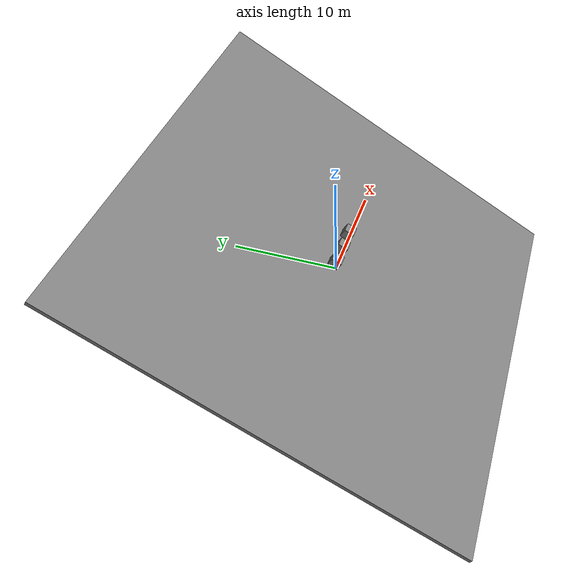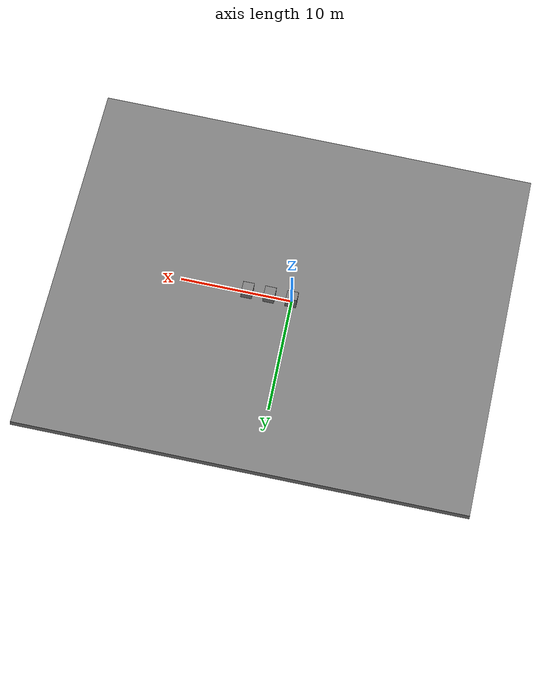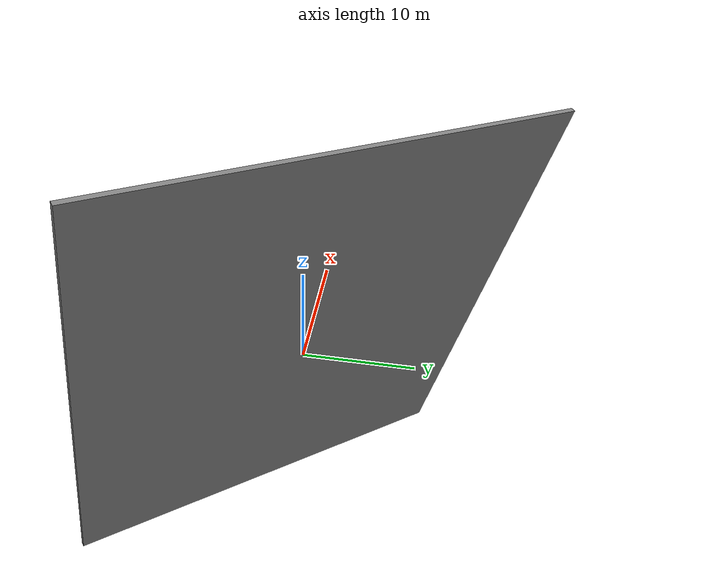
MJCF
<?xml version="1.0" encoding="utf-8"?>
<mujoco>
    <compiler angle="degree" coordinate="local"></compiler>
    <option timestep="0.001" iterations="100" gravity="0 0 -9.8" cone="elliptic" impratio="10">
        <!--apirate only affects the socket API and not the physics simulation-->
        <flag warmstart="enable"></flag>
    </option>

    <worldbody>
        <body pos="1 0 0">
            <geom type="box" size="20 20 0.2" contype="1" conaffinity="1" euler= "30 0 0" friction="0.6 0.05 0.01"/>
        </body>
        <body pos="0 0 1">
            <geom type="box" size="0.5 0.5 0.5" contype="1" conaffinity="1" euler= "30 0 0" friction="0.6 0.05 0.01"/>
            <joint type="free"/>
        </body>

        <body pos="2 0 1">
            <geom type="box" size="0.5 0.5 0.5" contype="1" conaffinity="1" euler= "30 0 0" margin="0.01"/>
            <joint type="free"/>
        </body>

        <body pos="4 0 1">
            <geom type="box" size="0.5 0.5 0.5" contype="1" conaffinity="1" euler= "30 0 0" solref="0.002 0.1"/>
            <joint type="free"/>
        </body>

        <light directional="true" ambient="0.2 0.2 0.2" diffuse="0.8 0.8 0.8" specular="0.3 0.3 0.3" castshadow="false" pos="0 1 4" dir="0 0 -1" name="light0"></light>
    </worldbody>
</mujoco>
